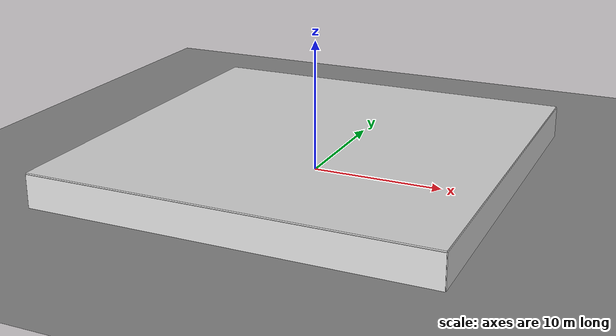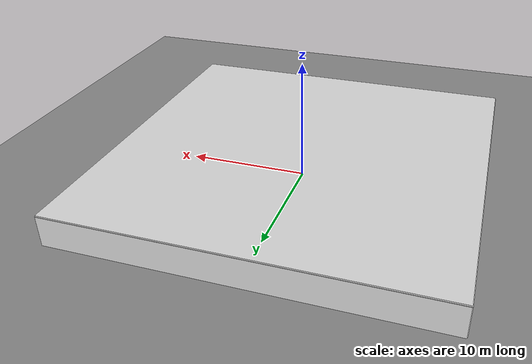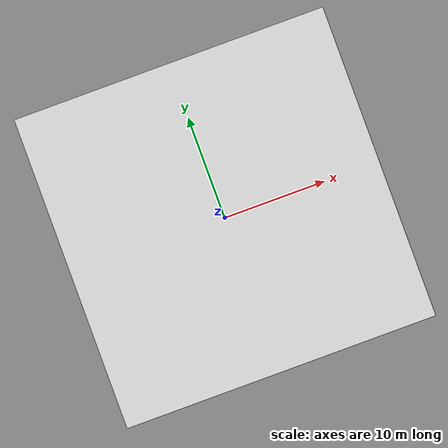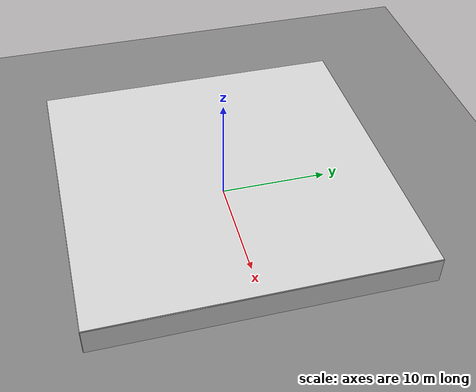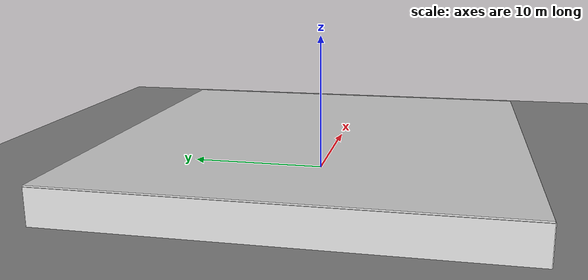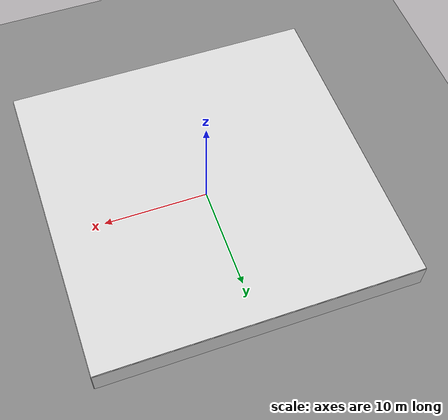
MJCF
<mujoco model="scene">

  <visual>
    <headlight diffuse="0.6 0.6 0.6" ambient="0.3 0.3 0.3" specular="0 0 0"/>
    <rgba haze="0.871 0.616 0.4 0.5"/>
    <global azimuth="-130" elevation="-20"/>
  </visual>

  <asset>
    <texture builtin="gradient" height="100" rgb1="0.9 0.9 0.9" rgb2="0.55 0.25 0.0" type="skybox" width="100"/>
    <include file="../../room/objects/materials.xml"/>
  </asset>

    <worldbody>
        <geom name="floor" friction="1 .1 .1" pos="0 0 0" size="0 0 0.125" type="plane" material="mat_floor" condim="3" conaffinity="1" contype="1" group="2"/>
        <light cutoff="1000" diffuse="1.5 1.5 1.5" dir="-0 0 -1.3" directional="true" exponent="10" pos="0 0 10.3" specular=".1 .1 .1" castshadow="false"/>

        <geom name="wall_negx" type="box" pos="-15.0 0.0 1.25" size="0.05 15.0 1.25" material="mat_wall"/>
        <geom name="wall_posx" type="box" pos=" 15.0 0.0 1.25" size="0.05 15.0 1.25" material="mat_wall"/>
        <geom name="wall_negy" type="box" pos="0.0 -15.0 1.25" size="15.0 0.05 1.25" material="mat_wall"/>
        <geom name="wall_posy" type="box" pos="0.0  15.0 1.25" size="15.0 0.05 1.25" material="mat_wall"/>

        <geom name="ceiling" type="box"
          pos="0 0 2.55"
          size="15.0 15.0 0.05"
          material="mat_wall"
          contype="1" conaffinity="1"
        />

        <!-- SCENARIO: chair_01 -->
        <!-- TARGET_BODY_NAME: chair_target -->
        <!-- LAYOUT: target=chair, distance=near, side=center, difficulty=easy -->

        <!-- TARGET: chair -->
        <body name="chair_target" pos="2.0954 0.1149 0.0" euler="0 0 0.0683">
          <include file="../../room/objects/chair.xml"/>
        </body>

        <!-- OBSTRUCTOR: none -->

        <!-- DISTRACTORS: none -->
    </worldbody>
</mujoco>

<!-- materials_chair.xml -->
<mujoco>
  <texture name="tex_wood_chair" type="2d" file="oak_veneer_01_diff_2k.png"/>
  <material name="mat_wood_chair"
            texture="tex_wood_chair"
            texrepeat="1.2 1.2"
            texuniform="true"
            rgba="1 1 1 1"
            specular="0.22"
            shininess="0.35"
            reflectance="0.04"/>
</mujoco>

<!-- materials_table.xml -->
<mujoco>
  <texture name="tex_wood_table" type="2d" file="wood_table_001_diff_2k.png"/>
  <material name="mat_wood_table"
            texture="tex_wood_table"
            texrepeat="1.2 1.2"
            texuniform="true"
            rgba="1 1 1 1"
            specular="0.22"
            shininess="0.35"
            reflectance="0.04"/>
</mujoco>

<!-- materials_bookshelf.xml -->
<mujoco>
  <texture name="tex_bookshelf_wood"
           type="2d"
           file="oak_veneer_01_diff_2k.png"/>

  <material name="mat_wood_bookshelf"
            texture="tex_bookshelf_wood"
            texrepeat="1.2 1.2"
            texuniform="true"
            rgba="1 1 1 1"
            specular="0.22"
            shininess="0.35"
            reflectance="0.04"/>
</mujoco>

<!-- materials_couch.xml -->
<mujoco>
  <texture name="tex_wood_couch" type="2d" file="wood_table_001_diff_2k.png"/>
  <material name="mat_wood_couch"
            texture="tex_wood_couch"
            texrepeat="1.2 1.2"
            texuniform="true"
            rgba="1 1 1 1"
            specular="0.22"
            shininess="0.35"
            reflectance="0.04"/>

  <texture name="tex_fabric" type="2d" file="rough_linen_diff_2k.png"/>
  <material name="mat_fabric"
            texture="tex_fabric"
            texrepeat="1.2 1.2"
            texuniform="true"
            rgba="1 1 1 1"
            specular="0.10"
            shininess="0.08"
            reflectance="0.01"/>
</mujoco>

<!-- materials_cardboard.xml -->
<mujoco>
  <texture name="tex_cardboard" type="2d" file="cardboard.png"/>
  <material name="mat_cardboard"
            texture="tex_cardboard"
            texrepeat="1.2 1.2"
            texuniform="true"
            rgba="1 1 1 1"
            specular="0.10"
            shininess="0.08"
            reflectance="0.01"/>
</mujoco>

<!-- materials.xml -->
<mujoco>
  <material name="mat_wall" rgba="0.85 0.85 0.85 1"/>
  <include file="materials_chair.xml"/>

  <include file="materials_table.xml"/>

  <include file="materials_bookshelf.xml"/>
  <material name="mat_book_red" rgba="0.70 0.18 0.16 1"/>
  <material name="mat_book_blue" rgba="0.16 0.31 0.62 1"/>
  <material name="mat_book_green" rgba="0.22 0.45 0.24 1"/>
  <material name="mat_book_yellow" rgba="0.78 0.66 0.22 1"/>
  <material name="mat_book_dark" rgba="0.20 0.18 0.17 1"/>

  <include file="materials_couch.xml"/>
  <include file="materials_cardboard.xml"/>

  <texture name="tex_metal" type="2d" file="metal.png"/>
  <material name="mat_metal" texture="tex_metal" texrepeat="2 2" reflectance="0.3"/>
  <material name="mat_trash_can_dark_green"
            texture="tex_metal"
            texrepeat="2 2"
            rgba="0.10 0.18 0.12 1"
            specular="0.18"
            shininess="0.20"
            reflectance="0.02"/>

  <texture name="tex_floor" type="2d" builtin="checker" width="512" height="512"
           rgb1="0.55 0.55 0.55" rgb2="0.50 0.50 0.50"/>
  <material name="mat_floor" texture="tex_floor" texrepeat="4 4" reflectance="0.00"/>

</mujoco>

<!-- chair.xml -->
<mujoco>
  <body>
    <!-- seat frame and seat board -->
    <geom name="chair_seat_top" type="box"
          pos="0 0 0.43" size="0.24 0.22 0.018"
          material="mat_wood_chair"/>
    <geom name="chair_helper_front" type="box"
          pos="0 0.185 0.185" size="0.187 0.012 0.185"
          rgba="0 0 0 0"/>
    <geom name="chair_helper_back" type="box"
          pos="0 -0.185 0.185" size="0.187 0.012 0.185"
          rgba="0 0 0 0"/>
    <geom name="chair_helper_left" type="box"
          pos="-0.205 0 0.185" size="0.012 0.167 0.185"
          rgba="0 0 0 0"/>
    <geom name="chair_helper_right" type="box"
          pos="0.205 0 0.185" size="0.012 0.167 0.185"
          rgba="0 0 0 0"/>
    <geom name="chair_seat_apron_front" type="box"
          pos="0 0.195 0.385" size="0.21 0.015 0.028"
          material="mat_wood_chair"/>
    <geom name="chair_seat_apron_back" type="box"
          pos="0 -0.195 0.385" size="0.21 0.015 0.028"
          material="mat_wood_chair"/>
    <geom name="chair_seat_apron_left" type="box"
          pos="-0.225 0 0.385" size="0.015 0.18 0.028"
          material="mat_wood_chair"/>
    <geom name="chair_seat_apron_right" type="box"
          pos="0.225 0 0.385" size="0.015 0.18 0.028"
          material="mat_wood_chair"/>

    <!-- front legs -->
    <geom name="chair_leg_fl" type="box"
          pos="-0.205 0.185 0.195" size="0.018 0.018 0.195"
          material="mat_wood_chair"/>
    <geom name="chair_leg_fr" type="box"
          pos="0.205 0.185 0.195" size="0.018 0.018 0.195"
          material="mat_wood_chair"/>

    <!-- rear legs extend upward into the backrest posts -->
    <geom name="chair_leg_rl" type="box"
          pos="-0.205 -0.185 0.365" size="0.019 0.019 0.535"
          material="mat_wood_chair"/>
    <geom name="chair_leg_rr" type="box"
          pos="0.205 -0.185 0.365" size="0.019 0.019 0.535"
          material="mat_wood_chair"/>

    <!-- lower stretchers -->
    <geom name="chair_stretcher_front" type="box"
          pos="0 0.185 0.165" size="0.187 0.012 0.012"
          material="mat_wood_chair"/>
    <geom name="chair_stretcher_back" type="box"
          pos="0 -0.185 0.165" size="0.187 0.012 0.012"
          material="mat_wood_chair"/>
    <geom name="chair_stretcher_left" type="box"
          pos="-0.205 0 0.150" size="0.012 0.185 0.012"
          material="mat_wood_chair"/>
    <geom name="chair_stretcher_right" type="box"
          pos="0.205 0 0.150" size="0.012 0.185 0.012"
          material="mat_wood_chair"/>

    <!-- backrest frame -->
    <geom name="chair_back_top" type="box"
          pos="0 -0.185 0.865" size="0.18 0.016 0.022"
          material="mat_wood_chair"/>
    <geom name="chair_back_mid" type="box"
          pos="0 -0.178 0.710" size="0.155 0.013 0.018"
          material="mat_wood_chair"/>

    <!-- vertical back slats -->
    <geom name="chair_back_slat_l" type="box"
          pos="-0.085 -0.175 0.565" size="0.014 0.010 0.160"
          material="mat_wood_chair"/>
    <geom name="chair_back_slat_c" type="box"
          pos="0 -0.175 0.565" size="0.014 0.010 0.160"
          material="mat_wood_chair"/>
    <geom name="chair_back_slat_r" type="box"
          pos="0.085 -0.175 0.565" size="0.014 0.010 0.160"
          material="mat_wood_chair"/>
  </body>
</mujoco>
